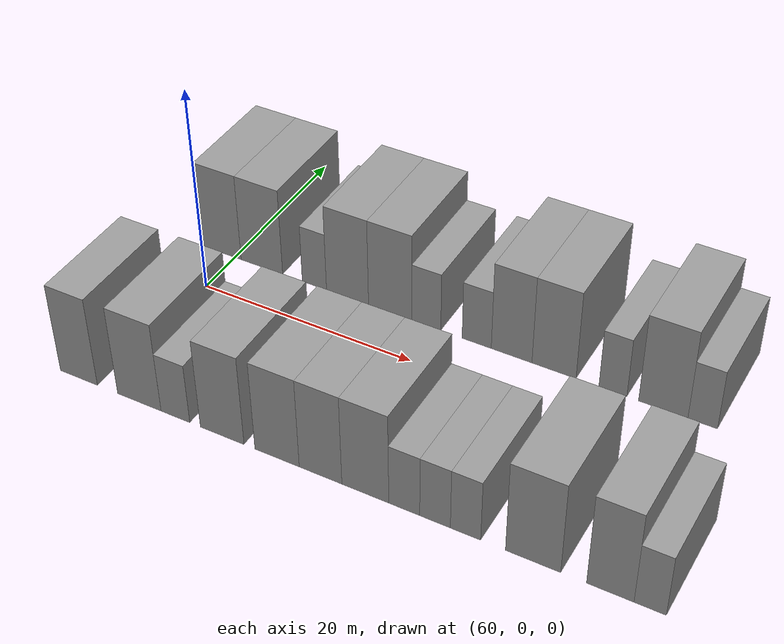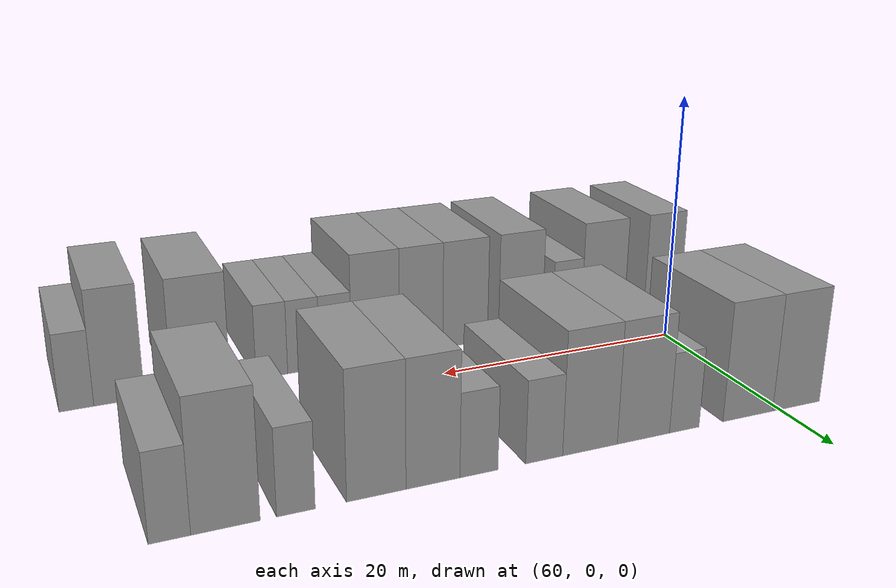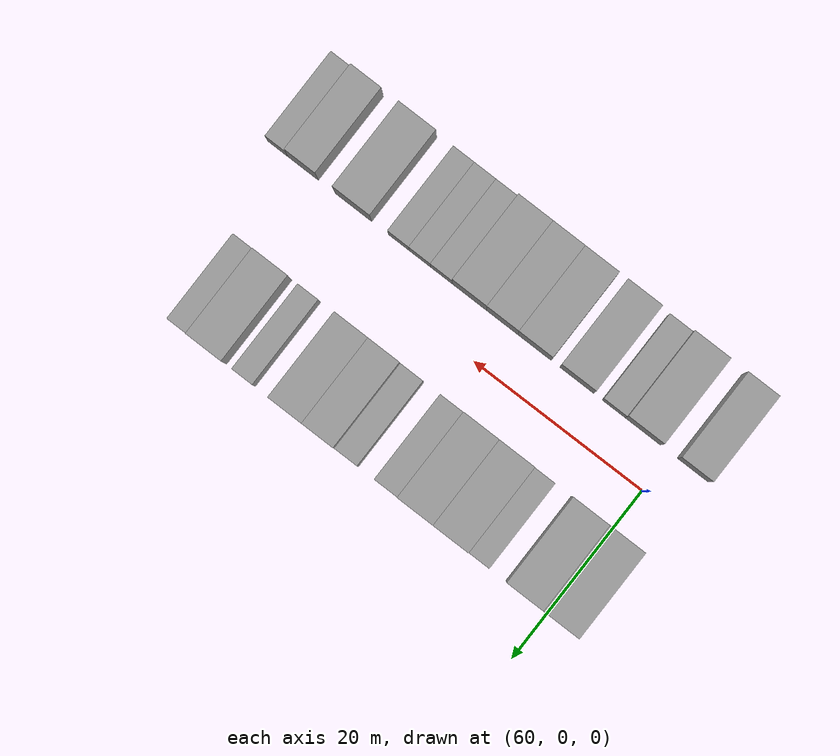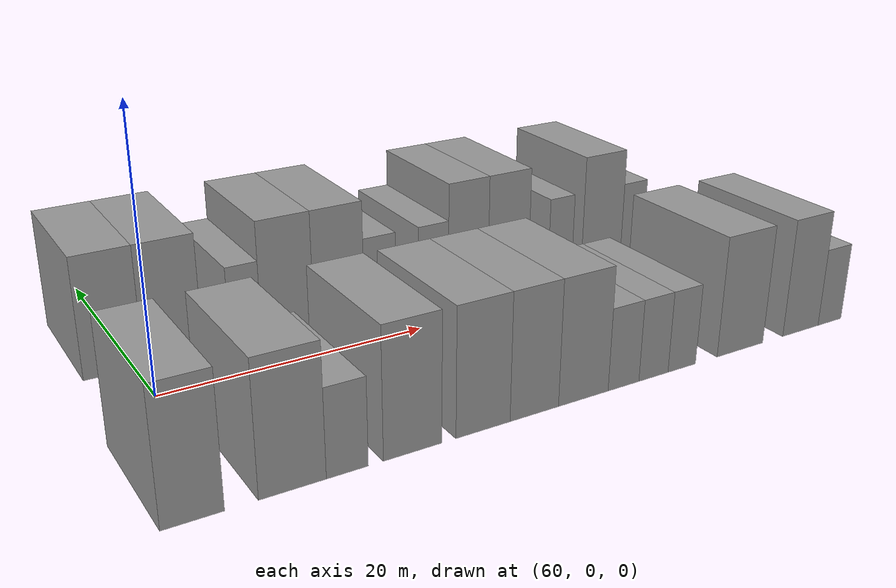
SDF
<sdf version="1.6">
 <world name="default">
  <model name="building_14">
   <static>1</static>
   <pose>58.5699 9.5000 0 0.000000 0.000000 1.570796</pose>
   <link name="link">
    <pose>0 0 4.50 0 0 0</pose>
    <collision name="collision"><geometry><box><size>10.0000 4.1665 9.0000</size></box></geometry></collision>
    <visual name="visual">
     <cast_shadows>0</cast_shadows>
     <geometry><box><size>10.0000 4.1665 9.0000</size></box></geometry>
     <material>
      <script>
       <uri>model://grey_wall/materials/scripts</uri>
       <uri>model://grey_wall/materials/textures</uri>
       <name>vrc/grey_wall</name>
      </script>
     </material>
    </visual>
   </link>
  </model>
  <model name="building_15">
   <static>1</static>
   <pose>62.7989 9.5000 0 0.000000 0.000000 1.570796</pose>
   <link name="link">
    <pose>0 0 4.50 0 0 0</pose>
    <collision name="collision"><geometry><box><size>10.0000 4.2914 9.0000</size></box></geometry></collision>
    <visual name="visual">
     <cast_shadows>0</cast_shadows>
     <geometry><box><size>10.0000 4.2914 9.0000</size></box></geometry>
     <material>
      <script>
       <uri>model://grey_wall/materials/scripts</uri>
       <uri>model://grey_wall/materials/textures</uri>
       <name>vrc/grey_wall</name>
      </script>
     </material>
    </visual>
   </link>
  </model>
  <model name="building_16">
   <static>1</static>
   <pose>68.1604 9.5000 0 0.000000 0.000000 1.570796</pose>
   <link name="link">
    <pose>0 0 3.00 0 0 0</pose>
    <collision name="collision"><geometry><box><size>10.0000 2.4318 6.0000</size></box></geometry></collision>
    <visual name="visual">
     <cast_shadows>0</cast_shadows>
     <geometry><box><size>10.0000 2.4318 6.0000</size></box></geometry>
     <material>
      <script>
       <uri>model://grey_wall/materials/scripts</uri>
       <uri>model://grey_wall/materials/textures</uri>
       <name>vrc/grey_wall</name>
      </script>
     </material>
    </visual>
   </link>
  </model>
  <model name="building_17">
   <static>1</static>
   <pose>71.4550 9.5000 0 0.000000 0.000000 1.570796</pose>
   <link name="link">
    <pose>0 0 4.50 0 0 0</pose>
    <collision name="collision"><geometry><box><size>10.0000 4.1574 9.0000</size></box></geometry></collision>
    <visual name="visual">
     <cast_shadows>0</cast_shadows>
     <geometry><box><size>10.0000 4.1574 9.0000</size></box></geometry>
     <material>
      <script>
       <uri>model://grey_wall/materials/scripts</uri>
       <uri>model://grey_wall/materials/textures</uri>
       <name>vrc/grey_wall</name>
      </script>
     </material>
    </visual>
   </link>
  </model>
  <model name="building_18">
   <static>1</static>
   <pose>75.6295 9.5000 0 0.000000 0.000000 1.570796</pose>
   <link name="link">
    <pose>0 0 4.50 0 0 0</pose>
    <collision name="collision"><geometry><box><size>10.0000 4.1917 9.0000</size></box></geometry></collision>
    <visual name="visual">
     <cast_shadows>0</cast_shadows>
     <geometry><box><size>10.0000 4.1917 9.0000</size></box></geometry>
     <material>
      <script>
       <uri>model://grey_wall/materials/scripts</uri>
       <uri>model://grey_wall/materials/textures</uri>
       <name>vrc/grey_wall</name>
      </script>
     </material>
    </visual>
   </link>
  </model>
  <model name="building_19">
   <static>1</static>
   <pose>79.0983 9.5000 0 0.000000 0.000000 1.570796</pose>
   <link name="link">
    <pose>0 0 3.00 0 0 0</pose>
    <collision name="collision"><geometry><box><size>10.0000 2.7459 6.0000</size></box></geometry></collision>
    <visual name="visual">
     <cast_shadows>0</cast_shadows>
     <geometry><box><size>10.0000 2.7459 6.0000</size></box></geometry>
     <material>
      <script>
       <uri>model://grey_wall/materials/scripts</uri>
       <uri>model://grey_wall/materials/textures</uri>
       <name>vrc/grey_wall</name>
      </script>
     </material>
    </visual>
   </link>
  </model>
  <model name="building_20">
   <static>1</static>
   <pose>83.8172 9.5000 0 0.000000 0.000000 1.570796</pose>
   <link name="link">
    <pose>0 0 3.00 0 0 0</pose>
    <collision name="collision"><geometry><box><size>10.0000 2.6920 6.0000</size></box></geometry></collision>
    <visual name="visual">
     <cast_shadows>0</cast_shadows>
     <geometry><box><size>10.0000 2.6920 6.0000</size></box></geometry>
     <material>
      <script>
       <uri>model://grey_wall/materials/scripts</uri>
       <uri>model://grey_wall/materials/textures</uri>
       <name>vrc/grey_wall</name>
      </script>
     </material>
    </visual>
   </link>
  </model>
  <model name="building_21">
   <static>1</static>
   <pose>87.0149 9.5000 0 0.000000 0.000000 1.570796</pose>
   <link name="link">
    <pose>0 0 4.50 0 0 0</pose>
    <collision name="collision"><geometry><box><size>10.0000 3.7034 9.0000</size></box></geometry></collision>
    <visual name="visual">
     <cast_shadows>0</cast_shadows>
     <geometry><box><size>10.0000 3.7034 9.0000</size></box></geometry>
     <material>
      <script>
       <uri>model://grey_wall/materials/scripts</uri>
       <uri>model://grey_wall/materials/textures</uri>
       <name>vrc/grey_wall</name>
      </script>
     </material>
    </visual>
   </link>
  </model>
  <model name="building_22">
   <static>1</static>
   <pose>90.8317 9.5000 0 0.000000 0.000000 1.570796</pose>
   <link name="link">
    <pose>0 0 4.50 0 0 0</pose>
    <collision name="collision"><geometry><box><size>10.0000 3.9303 9.0000</size></box></geometry></collision>
    <visual name="visual">
     <cast_shadows>0</cast_shadows>
     <geometry><box><size>10.0000 3.9303 9.0000</size></box></geometry>
     <material>
      <script>
       <uri>model://grey_wall/materials/scripts</uri>
       <uri>model://grey_wall/materials/textures</uri>
       <name>vrc/grey_wall</name>
      </script>
     </material>
    </visual>
   </link>
  </model>
  <model name="building_23">
   <static>1</static>
   <pose>96.0097 9.5000 0 0.000000 0.000000 1.570796</pose>
   <link name="link">
    <pose>0 0 3.00 0 0 0</pose>
    <collision name="collision"><geometry><box><size>10.0000 2.4257 6.0000</size></box></geometry></collision>
    <visual name="visual">
     <cast_shadows>0</cast_shadows>
     <geometry><box><size>10.0000 2.4257 6.0000</size></box></geometry>
     <material>
      <script>
       <uri>model://grey_wall/materials/scripts</uri>
       <uri>model://grey_wall/materials/textures</uri>
       <name>vrc/grey_wall</name>
      </script>
     </material>
    </visual>
   </link>
  </model>
  <model name="building_24">
   <static>1</static>
   <pose>100.3066 9.5000 0 0.000000 0.000000 1.570796</pose>
   <link name="link">
    <pose>0 0 4.50 0 0 0</pose>
    <collision name="collision"><geometry><box><size>10.0000 4.1679 9.0000</size></box></geometry></collision>
    <visual name="visual">
     <cast_shadows>0</cast_shadows>
     <geometry><box><size>10.0000 4.1679 9.0000</size></box></geometry>
     <material>
      <script>
       <uri>model://grey_wall/materials/scripts</uri>
       <uri>model://grey_wall/materials/textures</uri>
       <name>vrc/grey_wall</name>
      </script>
     </material>
    </visual>
   </link>
  </model>
  <model name="building_25">
   <static>1</static>
   <pose>103.6202 9.5000 0 0.000000 0.000000 1.570796</pose>
   <link name="link">
    <pose>0 0 3.00 0 0 0</pose>
    <collision name="collision"><geometry><box><size>10.0000 2.4592 6.0000</size></box></geometry></collision>
    <visual name="visual">
     <cast_shadows>0</cast_shadows>
     <geometry><box><size>10.0000 2.4592 6.0000</size></box></geometry>
     <material>
      <script>
       <uri>model://grey_wall/materials/scripts</uri>
       <uri>model://grey_wall/materials/textures</uri>
       <name>vrc/grey_wall</name>
      </script>
     </material>
    </visual>
   </link>
  </model>
  <model name="building_62">
   <static>1</static>
   <pose>57.4030 -9.5000 0 0.000000 0.000000 1.570796</pose>
   <link name="link">
    <pose>0 0 4.50 0 0 0</pose>
    <collision name="collision"><geometry><box><size>10.0000 3.6969 9.0000</size></box></geometry></collision>
    <visual name="visual">
     <cast_shadows>0</cast_shadows>
     <geometry><box><size>10.0000 3.6969 9.0000</size></box></geometry>
     <material>
      <script>
       <uri>model://grey_wall/materials/scripts</uri>
       <uri>model://grey_wall/materials/textures</uri>
       <name>vrc/grey_wall</name>
      </script>
     </material>
    </visual>
   </link>
  </model>
  <model name="building_63">
   <static>1</static>
   <pose>63.3575 -9.5000 0 0.000000 0.000000 1.570796</pose>
   <link name="link">
    <pose>0 0 4.50 0 0 0</pose>
    <collision name="collision"><geometry><box><size>10.0000 4.2121 9.0000</size></box></geometry></collision>
    <visual name="visual">
     <cast_shadows>0</cast_shadows>
     <geometry><box><size>10.0000 4.2121 9.0000</size></box></geometry>
     <material>
      <script>
       <uri>model://grey_wall/materials/scripts</uri>
       <uri>model://grey_wall/materials/textures</uri>
       <name>vrc/grey_wall</name>
      </script>
     </material>
    </visual>
   </link>
  </model>
  <model name="building_64">
   <static>1</static>
   <pose>66.8310 -9.5000 0 0.000000 0.000000 1.570796</pose>
   <link name="link">
    <pose>0 0 3.00 0 0 0</pose>
    <collision name="collision"><geometry><box><size>10.0000 2.7348 6.0000</size></box></geometry></collision>
    <visual name="visual">
     <cast_shadows>0</cast_shadows>
     <geometry><box><size>10.0000 2.7348 6.0000</size></box></geometry>
     <material>
      <script>
       <uri>model://grey_wall/materials/scripts</uri>
       <uri>model://grey_wall/materials/textures</uri>
       <name>vrc/grey_wall</name>
      </script>
     </material>
    </visual>
   </link>
  </model>
  <model name="building_65">
   <static>1</static>
   <pose>71.2220 -9.5000 0 0.000000 0.000000 1.570796</pose>
   <link name="link">
    <pose>0 0 4.50 0 0 0</pose>
    <collision name="collision"><geometry><box><size>10.0000 4.0472 9.0000</size></box></geometry></collision>
    <visual name="visual">
     <cast_shadows>0</cast_shadows>
     <geometry><box><size>10.0000 4.0472 9.0000</size></box></geometry>
     <material>
      <script>
       <uri>model://grey_wall/materials/scripts</uri>
       <uri>model://grey_wall/materials/textures</uri>
       <name>vrc/grey_wall</name>
      </script>
     </material>
    </visual>
   </link>
  </model>
  <model name="building_66">
   <static>1</static>
   <pose>76.2419 -9.5000 0 0.000000 0.000000 1.570796</pose>
   <link name="link">
    <pose>0 0 4.50 0 0 0</pose>
    <collision name="collision"><geometry><box><size>10.0000 3.9924 9.0000</size></box></geometry></collision>
    <visual name="visual">
     <cast_shadows>0</cast_shadows>
     <geometry><box><size>10.0000 3.9924 9.0000</size></box></geometry>
     <material>
      <script>
       <uri>model://grey_wall/materials/scripts</uri>
       <uri>model://grey_wall/materials/textures</uri>
       <name>vrc/grey_wall</name>
      </script>
     </material>
    </visual>
   </link>
  </model>
  <model name="building_67">
   <static>1</static>
   <pose>80.1162 -9.5000 0 0.000000 0.000000 1.570796</pose>
   <link name="link">
    <pose>0 0 4.50 0 0 0</pose>
    <collision name="collision"><geometry><box><size>10.0000 3.7562 9.0000</size></box></geometry></collision>
    <visual name="visual">
     <cast_shadows>0</cast_shadows>
     <geometry><box><size>10.0000 3.7562 9.0000</size></box></geometry>
     <material>
      <script>
       <uri>model://grey_wall/materials/scripts</uri>
       <uri>model://grey_wall/materials/textures</uri>
       <name>vrc/grey_wall</name>
      </script>
     </material>
    </visual>
   </link>
  </model>
  <model name="building_68">
   <static>1</static>
   <pose>84.0139 -9.5000 0 0.000000 0.000000 1.570796</pose>
   <link name="link">
    <pose>0 0 4.50 0 0 0</pose>
    <collision name="collision"><geometry><box><size>10.0000 4.0393 9.0000</size></box></geometry></collision>
    <visual name="visual">
     <cast_shadows>0</cast_shadows>
     <geometry><box><size>10.0000 4.0393 9.0000</size></box></geometry>
     <material>
      <script>
       <uri>model://grey_wall/materials/scripts</uri>
       <uri>model://grey_wall/materials/textures</uri>
       <name>vrc/grey_wall</name>
      </script>
     </material>
    </visual>
   </link>
  </model>
  <model name="building_69">
   <static>1</static>
   <pose>87.3392 -9.5000 0 0.000000 0.000000 1.570796</pose>
   <link name="link">
    <pose>0 0 3.00 0 0 0</pose>
    <collision name="collision"><geometry><box><size>10.0000 2.6112 6.0000</size></box></geometry></collision>
    <visual name="visual">
     <cast_shadows>0</cast_shadows>
     <geometry><box><size>10.0000 2.6112 6.0000</size></box></geometry>
     <material>
      <script>
       <uri>model://grey_wall/materials/scripts</uri>
       <uri>model://grey_wall/materials/textures</uri>
       <name>vrc/grey_wall</name>
      </script>
     </material>
    </visual>
   </link>
  </model>
  <model name="building_70">
   <static>1</static>
   <pose>89.9166 -9.5000 0 0.000000 0.000000 1.570796</pose>
   <link name="link">
    <pose>0 0 3.00 0 0 0</pose>
    <collision name="collision"><geometry><box><size>10.0000 2.5437 6.0000</size></box></geometry></collision>
    <visual name="visual">
     <cast_shadows>0</cast_shadows>
     <geometry><box><size>10.0000 2.5437 6.0000</size></box></geometry>
     <material>
      <script>
       <uri>model://grey_wall/materials/scripts</uri>
       <uri>model://grey_wall/materials/textures</uri>
       <name>vrc/grey_wall</name>
      </script>
     </material>
    </visual>
   </link>
  </model>
  <model name="building_71">
   <static>1</static>
   <pose>92.4292 -9.5000 0 0.000000 0.000000 1.570796</pose>
   <link name="link">
    <pose>0 0 3.00 0 0 0</pose>
    <collision name="collision"><geometry><box><size>10.0000 2.4815 6.0000</size></box></geometry></collision>
    <visual name="visual">
     <cast_shadows>0</cast_shadows>
     <geometry><box><size>10.0000 2.4815 6.0000</size></box></geometry>
     <material>
      <script>
       <uri>model://grey_wall/materials/scripts</uri>
       <uri>model://grey_wall/materials/textures</uri>
       <name>vrc/grey_wall</name>
      </script>
     </material>
    </visual>
   </link>
  </model>
  <model name="building_72">
   <static>1</static>
   <pose>97.8570 -9.5000 0 0.000000 0.000000 1.570796</pose>
   <link name="link">
    <pose>0 0 4.50 0 0 0</pose>
    <collision name="collision"><geometry><box><size>10.0000 4.3741 9.0000</size></box></geometry></collision>
    <visual name="visual">
     <cast_shadows>0</cast_shadows>
     <geometry><box><size>10.0000 4.3741 9.0000</size></box></geometry>
     <material>
      <script>
       <uri>model://grey_wall/materials/scripts</uri>
       <uri>model://grey_wall/materials/textures</uri>
       <name>vrc/grey_wall</name>
      </script>
     </material>
    </visual>
   </link>
  </model>
  <model name="building_73">
   <static>1</static>
   <pose>103.8518 -9.5000 0 0.000000 0.000000 1.570796</pose>
   <link name="link">
    <pose>0 0 4.50 0 0 0</pose>
    <collision name="collision"><geometry><box><size>10.0000 3.6155 9.0000</size></box></geometry></collision>
    <visual name="visual">
     <cast_shadows>0</cast_shadows>
     <geometry><box><size>10.0000 3.6155 9.0000</size></box></geometry>
     <material>
      <script>
       <uri>model://grey_wall/materials/scripts</uri>
       <uri>model://grey_wall/materials/textures</uri>
       <name>vrc/grey_wall</name>
      </script>
     </material>
    </visual>
   </link>
  </model>
  <model name="building_74">
   <static>1</static>
   <pose>106.8710 -9.5000 0 0.000000 0.000000 1.570796</pose>
   <link name="link">
    <pose>0 0 3.00 0 0 0</pose>
    <collision name="collision"><geometry><box><size>10.0000 2.4230 6.0000</size></box></geometry></collision>
    <visual name="visual">
     <cast_shadows>0</cast_shadows>
     <geometry><box><size>10.0000 2.4230 6.0000</size></box></geometry>
     <material>
      <script>
       <uri>model://grey_wall/materials/scripts</uri>
       <uri>model://grey_wall/materials/textures</uri>
       <name>vrc/grey_wall</name>
      </script>
     </material>
    </visual>
   </link>
  </model>
 </world>
</sdf>
